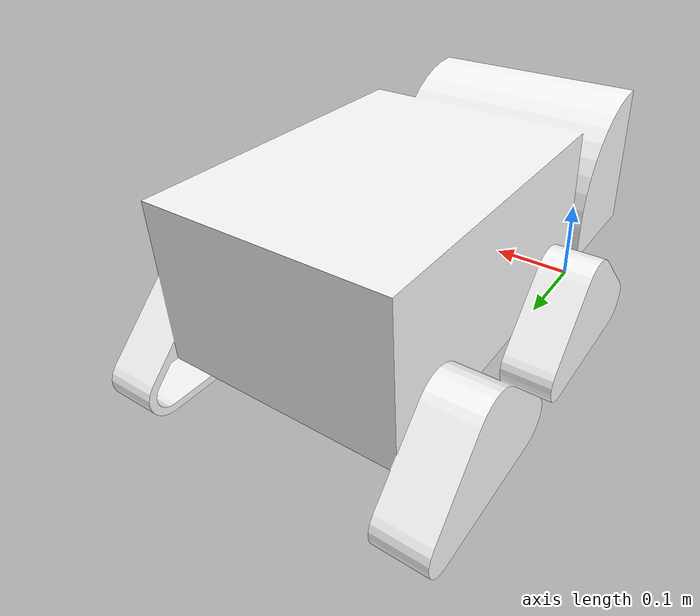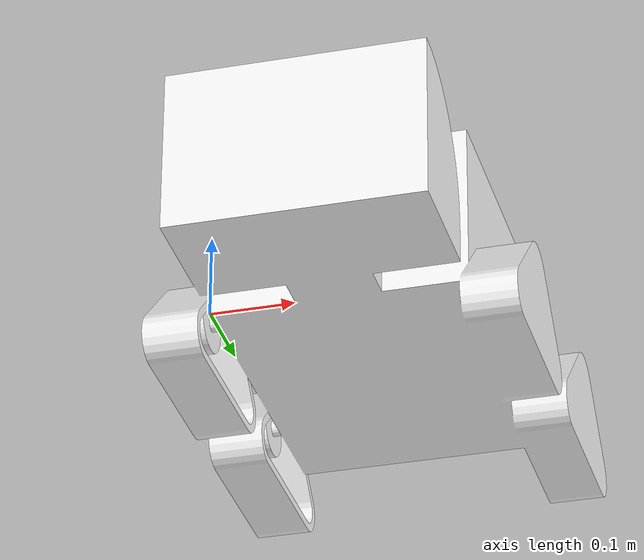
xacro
<?xml version="1.0" encoding="utf-8"?>

<robot xmlns:xacro="http://www.ros.org/wiki/xacro" name="car">

  <!-- 定义材料 -->
  <material name="white">
    <color rgba="1 1 1 1" />
  </material>

  <!-- 定义轮子参数宏 -->
  <xacro:macro name="wheel_link" params="name mesh_file">
    <link name="${name}">
      <inertial>
        <origin xyz="0.0369811320754719 -7.7715611723761E-16 -1.13797860024079E-15" rpy="0 0 0" />
        <mass value="0.166504410640259" />
        <inertia
          ixx="9.49153680465817E-05"
          ixy="-4.20723156859578E-21"
          ixz="3.32636648653541E-22"
          iyy="8.82470165646165E-05"
          iyz="0"
          izz="8.82470165646165E-05" />
      </inertial>
      <visual>
        <origin xyz="0 0 0" rpy="0 0 0" />
        <geometry>
          <mesh filename="package://drob_control/meshes/${mesh_file}.STL" />
        </geometry>
        <material name="white" />
      </visual>
      <collision>
        <origin xyz="0 0 0" rpy="0 0 0" />
        <geometry>
          <mesh filename="package://drob_control/meshes/${mesh_file}.STL" />
        </geometry>
      </collision>
    </link>
  </xacro:macro>

  <!-- 定义轮子关节宏 -->
  <xacro:macro name="wheel_joint" params="name parent child xyz rpy">
    <joint name="${name}" type="continuous">
      <origin xyz="${xyz}" rpy="${rpy}" />
      <parent link="${parent}" />
      <child link="${child}" />
      <axis xyz="1 0 0" />
    </joint>
  </xacro:macro>

  <!-- 主体链接 -->
  <link name="base_link">
    <inertial>
      <origin xyz="0.15 0.125782760442477 0.0905056224994855" rpy="0 0 0" />
      <mass value="33.5751223260577" />
      <inertia
        ixx="0.448373143813742"
        ixy="2.22672766169457E-17"
        ixz="6.55095281406476E-18"
        iyy="0.342599743069878"
        iyz="0.0053567955300172"
        izz="0.580163577047672" />
    </inertial>
    <visual>
      <origin xyz="0 0 0" rpy="0 0 0" />
      <geometry>
        <mesh filename="package://drob_control/meshes/base_link.STL" />
      </geometry>
      <material name="white" />
    </visual>
    <collision>
      <origin xyz="0 0 0" rpy="0 0 0" />
      <geometry>
        <mesh filename="package://drob_control/meshes/base_link.STL" />
      </geometry>
    </collision>
  </link>

  <!-- 使用宏创建四个轮子 -->
  <xacro:wheel_link name="rbw" mesh_file="rbw" />
  <xacro:wheel_link name="lbw" mesh_file="lbw" />
  <xacro:wheel_link name="lfw" mesh_file="lfw" />
  <xacro:wheel_link name="rfw" mesh_file="rfw" />

  <!-- 使用宏创建四个轮子关节 -->
  <xacro:wheel_joint
    name="rbj"
    parent="base_link"
    child="rbw"
    xyz="0 0.33 0.0299999999999998"
    rpy="0.526415693374454 0 3.14159265358979" />

  <xacro:wheel_joint
    name="lbj"
    parent="base_link"
    child="lbw"
    xyz="0.28 0.33 0.0299999999999991"
    rpy="-2.61517696021534 0 0" />

  <xacro:wheel_joint
    name="lfj"
    parent="base_link"
    child="lfw"
    xyz="0.28 0.0700000000000002 0.0299999999999993"
    rpy="-2.61517696021534 0 0" />

  <xacro:wheel_joint
    name="rfj"
    parent="base_link"
    child="rfw"
    xyz="0 0.0700000000000001 0.0300000000000001"
    rpy="0.526415693374454 0 -3.14159265358979" />

</robot>
